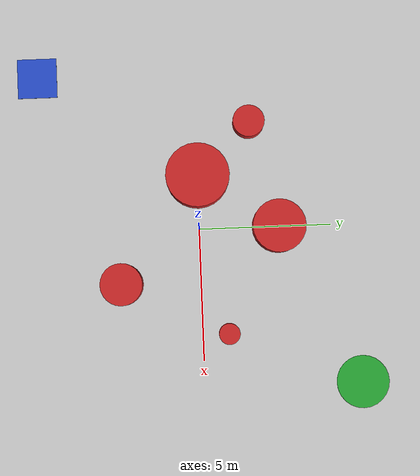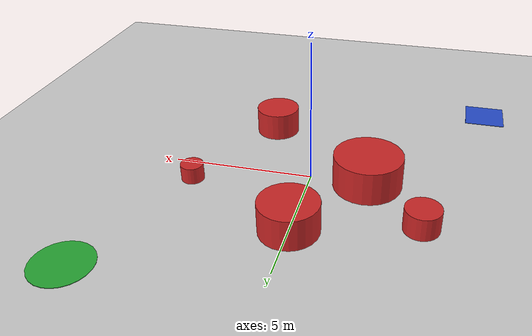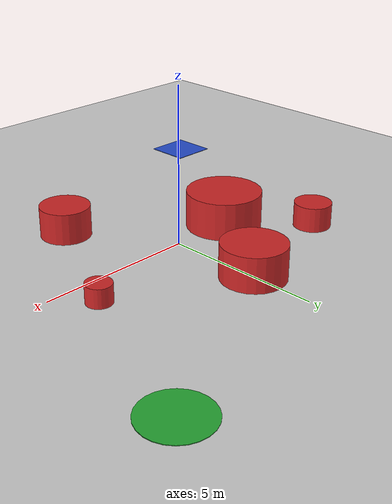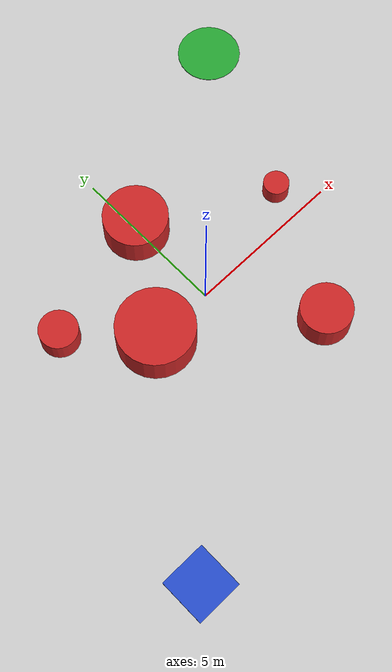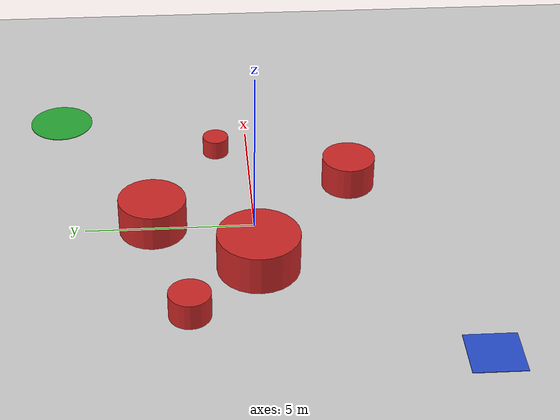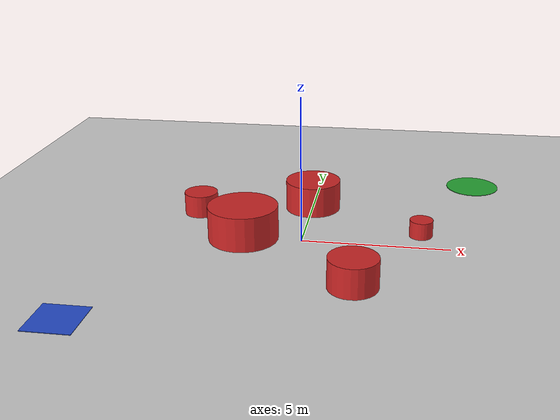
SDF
<?xml version="1.0"?>
<sdf version="1.6">
  <world name="world2_maze">

    <!-- Physics -->
    <physics name="default_physics" default="0" type="ode">
      <gravity>0 0 -9.8066</gravity>
      <ode>
        <solver>
          <type>quick</type>
          <iters>10</iters>
          <sor>1.3</sor>
        </solver>
      </ode>
      <real_time_factor>1</real_time_factor>
      <real_time_update_rate>1000</real_time_update_rate>
    </physics>

    <!-- Ground Plane -->
    <include>
      <uri>model://ground_plane</uri>
    </include>

    <!-- Lighting -->
    <include>
      <uri>model://sun</uri>
    </include>

    <!-- Start Area (Blue Platform) -->
    <model name="start_area">
      <pose>-6 -6 0.01 0 0 0</pose>
      <static>true</static>
      <link name="link">
        <visual name="visual">
          <geometry>
            <box>
              <size>1.5 1.5 0.02</size>
            </box>
          </geometry>
          <material>
            <script>
              <name>Gazebo/Blue</name>
            </script>
          </material>
        </visual>
        <collision name="collision">
          <geometry>
            <box>
              <size>1.5 1.5 0.02</size>
            </box>
          </geometry>
        </collision>
      </link>
    </model>

    <!-- Target Area (Green Platform) -->
    <model name="target_area">
      <pose>6 6 0.01 0 0 0</pose>
      <static>true</static>
      <link name="link">
        <visual name="visual">
          <geometry>
            <cylinder>
              <radius>1.0</radius>
              <length>0.02</length>
            </cylinder>
          </geometry>
          <material>
            <script>
              <name>Gazebo/Green</name>
            </script>
          </material>
        </visual>
        <collision name="collision">
          <geometry>
            <cylinder>
              <radius>1.0</radius>
              <length>0.02</length>
            </cylinder>
          </geometry>
        </collision>
      </link>
    </model>

    <!-- Obstacle 1 - Large Circle -->
    <model name="obstacle1">
      <pose>-2 0 0.6 0 0 0</pose>
      <static>true</static>
      <link name="link">
        <visual name="visual">
          <geometry>
            <cylinder>
              <radius>1.2</radius>
              <length>1.2</length>
            </cylinder>
          </geometry>
          <material>
            <script>
              <name>Gazebo/Red</name>
            </script>
          </material>
        </visual>
        <collision name="collision">
          <geometry>
            <cylinder>
              <radius>1.2</radius>
              <length>1.2</length>
            </cylinder>
          </geometry>
        </collision>
      </link>
    </model>

    <!-- Obstacle 2 - Medium Circle -->
    <model name="obstacle2">
      <pose>2 -3 0.5 0 0 0</pose>
      <static>true</static>
      <link name="link">
        <visual name="visual">
          <geometry>
            <cylinder>
              <radius>0.8</radius>
              <length>1.0</length>
            </cylinder>
          </geometry>
          <material>
            <script>
              <name>Gazebo/Red</name>
            </script>
          </material>
        </visual>
        <collision name="collision">
          <geometry>
            <cylinder>
              <radius>0.8</radius>
              <length>1.0</length>
            </cylinder>
          </geometry>
        </collision>
      </link>
    </model>

    <!-- Obstacle 3 - Medium-Large Circle -->
    <model name="obstacle3">
      <pose>0 3 0.55 0 0 0</pose>
      <static>true</static>
      <link name="link">
        <visual name="visual">
          <geometry>
            <cylinder>
              <radius>1.0</radius>
              <length>1.1</length>
            </cylinder>
          </geometry>
          <material>
            <script>
              <name>Gazebo/Red</name>
            </script>
          </material>
        </visual>
        <collision name="collision">
          <geometry>
            <cylinder>
              <radius>1.0</radius>
              <length>1.1</length>
            </cylinder>
          </geometry>
        </collision>
      </link>
    </model>

    <!-- Obstacle 4 - Small Circle -->
    <model name="obstacle4">
      <pose>-4 2 0.4 0 0 0</pose>
      <static>true</static>
      <link name="link">
        <visual name="visual">
          <geometry>
            <cylinder>
              <radius>0.6</radius>
              <length>0.8</length>
            </cylinder>
          </geometry>
          <material>
            <script>
              <name>Gazebo/Red</name>
            </script>
          </material>
        </visual>
        <collision name="collision">
          <geometry>
            <cylinder>
              <radius>0.6</radius>
              <length>0.8</length>
            </cylinder>
          </geometry>
        </collision>
      </link>
    </model>

    <!-- Obstacle 5 - Extra Small Circle -->
    <model name="obstacle5">
      <pose>4 1 0.3 0 0 0</pose>
      <static>true</static>
      <link name="link">
        <visual name="visual">
          <geometry>
            <cylinder>
              <radius>0.4</radius>
              <length>0.6</length>
            </cylinder>
          </geometry>
          <material>
            <script>
              <name>Gazebo/Red</name>
            </script>
          </material>
        </visual>
        <collision name="collision">
          <geometry>
            <cylinder>
              <radius>0.4</radius>
              <length>0.6</length>
            </cylinder>
          </geometry>
        </collision>
      </link>
    </model>

  </world>
</sdf>
